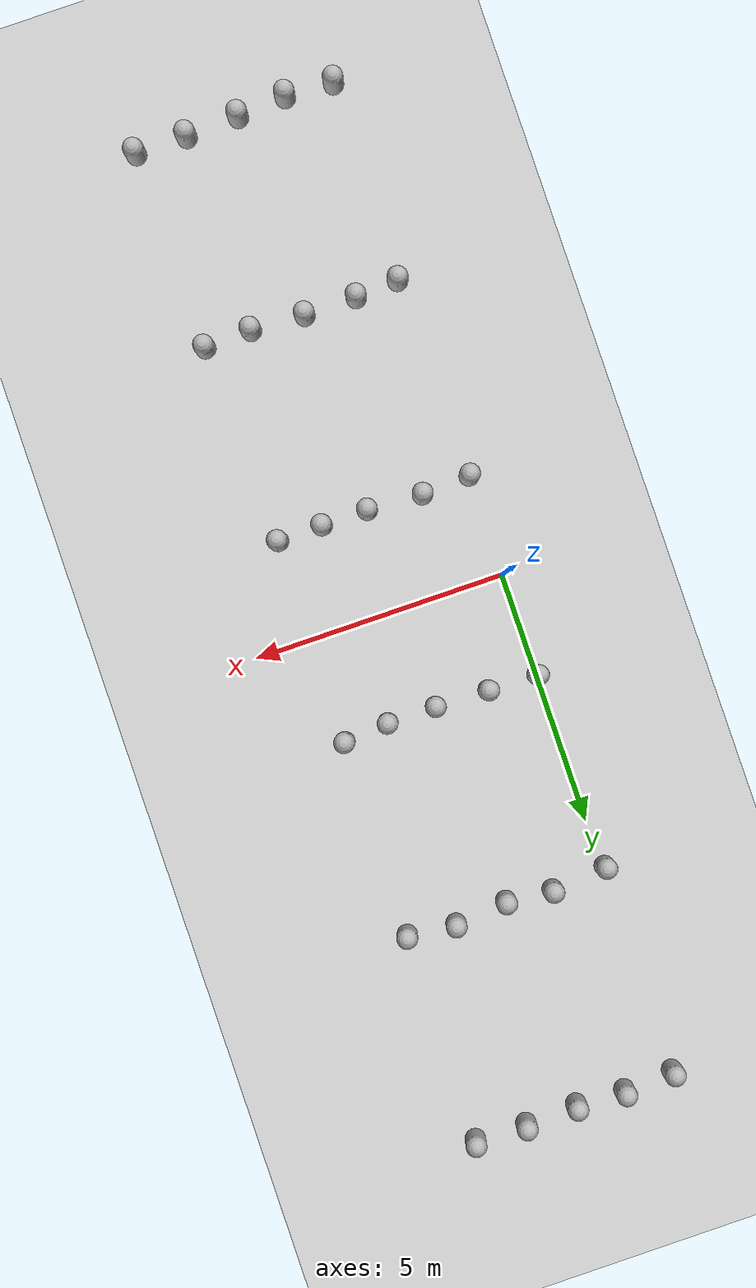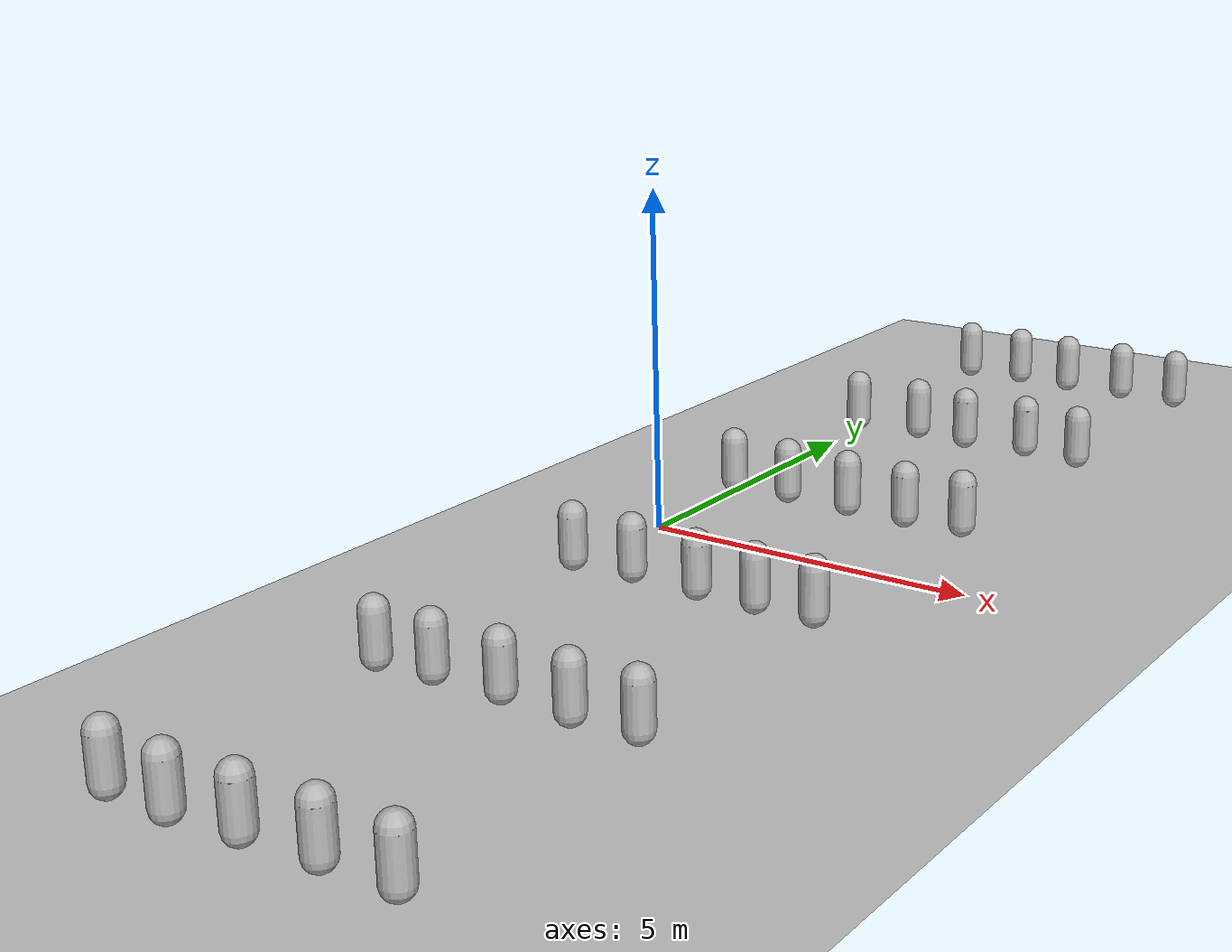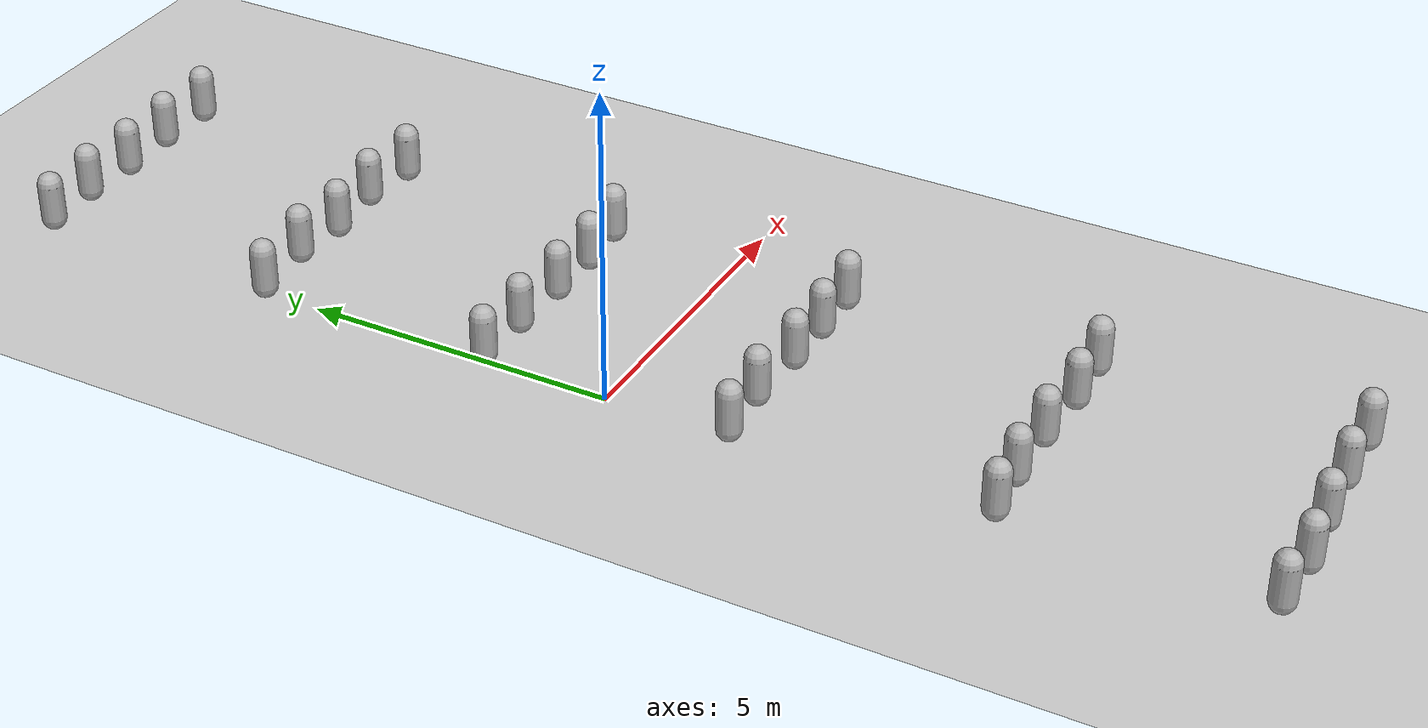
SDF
<sdf version='1.10'>
  <world name='empty'>
    <physics name='1ms' type='ignored'>
      <max_step_size>0.001</max_step_size>
      <real_time_factor>1</real_time_factor>
      <real_time_update_rate>1000</real_time_update_rate>
    </physics>
    <plugin name='gz::sim::systems::Physics' filename='gz-sim-physics-system'/>
    <plugin name='gz::sim::systems::UserCommands' filename='gz-sim-user-commands-system'/>
    <plugin name='gz::sim::systems::SceneBroadcaster' filename='gz-sim-scene-broadcaster-system'/>
    <plugin name='gz::sim::systems::Sensors' filename='gz-sim-sensors-system'>
      <render_engine>ogre2</render_engine>
    </plugin>
    <plugin name='gz::sim::systems::Contact' filename='gz-sim-contact-system'/>
    <gravity>0 0 -9.8000000000000007</gravity>
    <magnetic_field>5.5644999999999998e-06 2.2875799999999999e-05 -4.2388400000000002e-05</magnetic_field>
    <atmosphere type='adiabatic'/>
    <scene>
      <ambient>0.400000006 0.400000006 0.400000006 1</ambient>
      <background>0.699999988 0.699999988 0.699999988 1</background>
      <shadows>true</shadows>
    </scene>
    <model name='ground_plane'>
      <static>true</static>
      <link name='link'>
        <collision name='collision'>
          <geometry>
            <plane>
              <normal>0 0 1</normal>
              <size>100 100</size>
            </plane>
          </geometry>
          <surface>
            <friction>
              <ode/>
            </friction>
            <bounce/>
            <contact/>
          </surface>
        </collision>
        <visual name='visual'>
          <geometry>
            <plane>
              <normal>0 0 1</normal>
              <size>100 100</size>
            </plane>
          </geometry>
          <material>
            <ambient>0.800000012 0.800000012 0.800000012 1</ambient>
            <diffuse>0.800000012 0.800000012 0.800000012 1</diffuse>
            <specular>0.800000012 0.800000012 0.800000012 1</specular>
          </material>
        </visual>
        <pose>0 0 0 0 0 0</pose>
        <inertial>
          <pose>0 0 0 0 0 0</pose>
          <mass>1</mass>
          <inertia>
            <ixx>1</ixx>
            <ixy>0</ixy>
            <ixz>0</ixz>
            <iyy>1</iyy>
            <iyz>0</iyz>
            <izz>1</izz>
          </inertia>
        </inertial>
        <enable_wind>false</enable_wind>
      </link>
      <pose>0 0 0 0 0 0</pose>
      <self_collide>false</self_collide>
    </model>
    <model name='capsule'>
      <pose>-0.015504085364123732 2.0223022259179788 0.499999999902001 0 0 0</pose>
      <link name='capsule_link'>
        <inertial>
          <inertia>
            <ixx>0.074153999999999998</ixx>
            <ixy>0</ixy>
            <ixz>0</ixz>
            <iyy>0.074153999999999998</iyy>
            <iyz>0</iyz>
            <izz>0.018769000000000001</izz>
          </inertia>
          <mass>1</mass>
          <pose>0 0 0 0 0 0</pose>
        </inertial>
        <collision name='capsule_collision'>
          <geometry>
            <capsule>
              <radius>0.20000000000000001</radius>
              <length>0.59999999999999998</length>
            </capsule>
          </geometry>
          <surface>
            <friction>
              <ode/>
            </friction>
            <bounce/>
            <contact/>
          </surface>
        </collision>
        <visual name='capsule_visual'>
          <geometry>
            <capsule>
              <radius>0.20000000000000001</radius>
              <length>0.59999999999999998</length>
            </capsule>
          </geometry>
          <material>
            <ambient>0.300000012 0.300000012 0.300000012 1</ambient>
            <diffuse>0.699999988 0.699999988 0.699999988 1</diffuse>
            <specular>1 1 1 1</specular>
          </material>
        </visual>
        <pose>0 0 0 0 0 0</pose>
        <enable_wind>false</enable_wind>
      </link>
      <static>false</static>
      <self_collide>false</self_collide>
    </model>
    <model name='capsule_1'>
      <pose>0.97054917333275093 1.9993720327717266 0.499999999902001 0 0 0</pose>
      <link name='capsule_link'>
        <inertial>
          <inertia>
            <ixx>0.074153999999999998</ixx>
            <ixy>0</ixy>
            <ixz>0</ixz>
            <iyy>0.074153999999999998</iyy>
            <iyz>0</iyz>
            <izz>0.018769000000000001</izz>
          </inertia>
          <mass>1</mass>
        </inertial>
        <collision name='capsule_collision'>
          <geometry>
            <capsule>
              <radius>0.20000000000000001</radius>
              <length>0.59999999999999998</length>
            </capsule>
          </geometry>
          <surface>
            <friction>
              <ode/>
            </friction>
            <bounce/>
            <contact/>
          </surface>
        </collision>
        <visual name='capsule_visual'>
          <geometry>
            <capsule>
              <radius>0.20000000000000001</radius>
              <length>0.59999999999999998</length>
            </capsule>
          </geometry>
          <material>
            <ambient>0.300000012 0.300000012 0.300000012 1</ambient>
            <diffuse>0.699999988 0.699999988 0.699999988 1</diffuse>
            <specular>1 1 1 1</specular>
          </material>
        </visual>
      </link>
      <static>false</static>
      <self_collide>false</self_collide>
    </model>
    <model name='capsule_2'>
      <pose>2.0272820789827346 1.9705057532408881 0.499999999902001 0 0 0</pose>
      <link name='capsule_link'>
        <inertial>
          <inertia>
            <ixx>0.074153999999999998</ixx>
            <ixy>0</ixy>
            <ixz>0</ixz>
            <iyy>0.074153999999999998</iyy>
            <iyz>0</iyz>
            <izz>0.018769000000000001</izz>
          </inertia>
          <mass>1</mass>
        </inertial>
        <collision name='capsule_collision'>
          <geometry>
            <capsule>
              <radius>0.20000000000000001</radius>
              <length>0.59999999999999998</length>
            </capsule>
          </geometry>
          <surface>
            <friction>
              <ode/>
            </friction>
            <bounce/>
            <contact/>
          </surface>
        </collision>
        <visual name='capsule_visual'>
          <geometry>
            <capsule>
              <radius>0.20000000000000001</radius>
              <length>0.59999999999999998</length>
            </capsule>
          </geometry>
          <material>
            <ambient>0.300000012 0.300000012 0.300000012 1</ambient>
            <diffuse>0.699999988 0.699999988 0.699999988 1</diffuse>
            <specular>1 1 1 1</specular>
          </material>
        </visual>
      </link>
      <static>false</static>
      <self_collide>false</self_collide>
    </model>
    <model name='capsule_3'>
      <pose>2.9953771389620947 1.9740548271759886 0.499999999902001 0 0 0</pose>
      <link name='capsule_link'>
        <inertial>
          <inertia>
            <ixx>0.074153999999999998</ixx>
            <ixy>0</ixy>
            <ixz>0</ixz>
            <iyy>0.074153999999999998</iyy>
            <iyz>0</iyz>
            <izz>0.018769000000000001</izz>
          </inertia>
          <mass>1</mass>
        </inertial>
        <collision name='capsule_collision'>
          <geometry>
            <capsule>
              <radius>0.20000000000000001</radius>
              <length>0.59999999999999998</length>
            </capsule>
          </geometry>
          <surface>
            <friction>
              <ode/>
            </friction>
            <bounce/>
            <contact/>
          </surface>
        </collision>
        <visual name='capsule_visual'>
          <geometry>
            <capsule>
              <radius>0.20000000000000001</radius>
              <length>0.59999999999999998</length>
            </capsule>
          </geometry>
          <material>
            <ambient>0.300000012 0.300000012 0.300000012 1</ambient>
            <diffuse>0.699999988 0.699999988 0.699999988 1</diffuse>
            <specular>1 1 1 1</specular>
          </material>
        </visual>
      </link>
      <static>false</static>
      <self_collide>false</self_collide>
    </model>
    <model name='capsule_4'>
      <pose>3.8914296233820718 2.053773617481041 0.499999999902001 0 0 0</pose>
      <link name='capsule_link'>
        <inertial>
          <inertia>
            <ixx>0.074153999999999998</ixx>
            <ixy>0</ixy>
            <ixz>0</ixz>
            <iyy>0.074153999999999998</iyy>
            <iyz>0</iyz>
            <izz>0.018769000000000001</izz>
          </inertia>
          <mass>1</mass>
        </inertial>
        <collision name='capsule_collision'>
          <geometry>
            <capsule>
              <radius>0.20000000000000001</radius>
              <length>0.59999999999999998</length>
            </capsule>
          </geometry>
          <surface>
            <friction>
              <ode/>
            </friction>
            <bounce/>
            <contact/>
          </surface>
        </collision>
        <visual name='capsule_visual'>
          <geometry>
            <capsule>
              <radius>0.20000000000000001</radius>
              <length>0.59999999999999998</length>
            </capsule>
          </geometry>
          <material>
            <ambient>0.300000012 0.300000012 0.300000012 1</ambient>
            <diffuse>0.699999988 0.699999988 0.699999988 1</diffuse>
            <specular>1 1 1 1</specular>
          </material>
        </visual>
      </link>
      <static>false</static>
      <self_collide>false</self_collide>
    </model>
    <model name='capsule_5'>
      <pose>3.8598139703519969 -2.0004881097286829 0.499999999902001 0 0 0</pose>
      <link name='capsule_link'>
        <inertial>
          <inertia>
            <ixx>0.074153999999999998</ixx>
            <ixy>0</ixy>
            <ixz>0</ixz>
            <iyy>0.074153999999999998</iyy>
            <iyz>0</iyz>
            <izz>0.018769000000000001</izz>
          </inertia>
          <mass>1</mass>
        </inertial>
        <collision name='capsule_collision'>
          <geometry>
            <capsule>
              <radius>0.20000000000000001</radius>
              <length>0.59999999999999998</length>
            </capsule>
          </geometry>
          <surface>
            <friction>
              <ode/>
            </friction>
            <bounce/>
            <contact/>
          </surface>
        </collision>
        <visual name='capsule_visual'>
          <geometry>
            <capsule>
              <radius>0.20000000000000001</radius>
              <length>0.59999999999999998</length>
            </capsule>
          </geometry>
          <material>
            <ambient>0.300000012 0.300000012 0.300000012 1</ambient>
            <diffuse>0.699999988 0.699999988 0.699999988 1</diffuse>
            <specular>1 1 1 1</specular>
          </material>
        </visual>
      </link>
      <static>false</static>
      <self_collide>false</self_collide>
    </model>
    <model name='capsule_6'>
      <pose>2.9682266701583604 -2.0146066449862823 0.499999999902001 0 0 0</pose>
      <link name='capsule_link'>
        <inertial>
          <inertia>
            <ixx>0.074153999999999998</ixx>
            <ixy>0</ixy>
            <ixz>0</ixz>
            <iyy>0.074153999999999998</iyy>
            <iyz>0</iyz>
            <izz>0.018769000000000001</izz>
          </inertia>
          <mass>1</mass>
        </inertial>
        <collision name='capsule_collision'>
          <geometry>
            <capsule>
              <radius>0.20000000000000001</radius>
              <length>0.59999999999999998</length>
            </capsule>
          </geometry>
          <surface>
            <friction>
              <ode/>
            </friction>
            <bounce/>
            <contact/>
          </surface>
        </collision>
        <visual name='capsule_visual'>
          <geometry>
            <capsule>
              <radius>0.20000000000000001</radius>
              <length>0.59999999999999998</length>
            </capsule>
          </geometry>
          <material>
            <ambient>0.300000012 0.300000012 0.300000012 1</ambient>
            <diffuse>0.699999988 0.699999988 0.699999988 1</diffuse>
            <specular>1 1 1 1</specular>
          </material>
        </visual>
      </link>
      <static>false</static>
      <self_collide>false</self_collide>
    </model>
    <model name='capsule_7'>
      <pose>2.0504103721542997 -2.0161228031697096 0.499999999902001 0 0 0</pose>
      <link name='capsule_link'>
        <inertial>
          <inertia>
            <ixx>0.074153999999999998</ixx>
            <ixy>0</ixy>
            <ixz>0</ixz>
            <iyy>0.074153999999999998</iyy>
            <iyz>0</iyz>
            <izz>0.018769000000000001</izz>
          </inertia>
          <mass>1</mass>
        </inertial>
        <collision name='capsule_collision'>
          <geometry>
            <capsule>
              <radius>0.20000000000000001</radius>
              <length>0.59999999999999998</length>
            </capsule>
          </geometry>
          <surface>
            <friction>
              <ode/>
            </friction>
            <bounce/>
            <contact/>
          </surface>
        </collision>
        <visual name='capsule_visual'>
          <geometry>
            <capsule>
              <radius>0.20000000000000001</radius>
              <length>0.59999999999999998</length>
            </capsule>
          </geometry>
          <material>
            <ambient>0.300000012 0.300000012 0.300000012 1</ambient>
            <diffuse>0.699999988 0.699999988 0.699999988 1</diffuse>
            <specular>1 1 1 1</specular>
          </material>
        </visual>
      </link>
      <static>false</static>
      <self_collide>false</self_collide>
    </model>
    <model name='capsule_8'>
      <pose>0.95077118176590947 -1.9581262435794975 0.499999999902001 0 0 0</pose>
      <link name='capsule_link'>
        <inertial>
          <inertia>
            <ixx>0.074153999999999998</ixx>
            <ixy>0</ixy>
            <ixz>0</ixz>
            <iyy>0.074153999999999998</iyy>
            <iyz>0</iyz>
            <izz>0.018769000000000001</izz>
          </inertia>
          <mass>1</mass>
        </inertial>
        <collision name='capsule_collision'>
          <geometry>
            <capsule>
              <radius>0.20000000000000001</radius>
              <length>0.59999999999999998</length>
            </capsule>
          </geometry>
          <surface>
            <friction>
              <ode/>
            </friction>
            <bounce/>
            <contact/>
          </surface>
        </collision>
        <visual name='capsule_visual'>
          <geometry>
            <capsule>
              <radius>0.20000000000000001</radius>
              <length>0.59999999999999998</length>
            </capsule>
          </geometry>
          <material>
            <ambient>0.300000012 0.300000012 0.300000012 1</ambient>
            <diffuse>0.699999988 0.699999988 0.699999988 1</diffuse>
            <specular>1 1 1 1</specular>
          </material>
        </visual>
      </link>
      <static>false</static>
      <self_collide>false</self_collide>
    </model>
    <model name='capsule_9'>
      <pose>-0.015503570536382405 -2.0109721099811662 0.499999999902001 0 0 0</pose>
      <link name='capsule_link'>
        <inertial>
          <inertia>
            <ixx>0.074153999999999998</ixx>
            <ixy>0</ixy>
            <ixz>0</ixz>
            <iyy>0.074153999999999998</iyy>
            <iyz>0</iyz>
            <izz>0.018769000000000001</izz>
          </inertia>
          <mass>1</mass>
        </inertial>
        <collision name='capsule_collision'>
          <geometry>
            <capsule>
              <radius>0.20000000000000001</radius>
              <length>0.59999999999999998</length>
            </capsule>
          </geometry>
          <surface>
            <friction>
              <ode/>
            </friction>
            <bounce/>
            <contact/>
          </surface>
        </collision>
        <visual name='capsule_visual'>
          <geometry>
            <capsule>
              <radius>0.20000000000000001</radius>
              <length>0.59999999999999998</length>
            </capsule>
          </geometry>
          <material>
            <ambient>0.300000012 0.300000012 0.300000012 1</ambient>
            <diffuse>0.699999988 0.699999988 0.699999988 1</diffuse>
            <specular>1 1 1 1</specular>
          </material>
        </visual>
      </link>
      <static>false</static>
      <self_collide>false</self_collide>
    </model>
    <model name='capsule_10'>
      <pose>3.9520187097455963 5.9308314425512991 0.499999999902001 0 0 0</pose>
      <link name='capsule_link'>
        <inertial>
          <inertia>
            <ixx>0.074153999999999998</ixx>
            <ixy>0</ixy>
            <ixz>0</ixz>
            <iyy>0.074153999999999998</iyy>
            <iyz>0</iyz>
            <izz>0.018769000000000001</izz>
          </inertia>
          <mass>1</mass>
        </inertial>
        <collision name='capsule_collision'>
          <geometry>
            <capsule>
              <radius>0.20000000000000001</radius>
              <length>0.59999999999999998</length>
            </capsule>
          </geometry>
          <surface>
            <friction>
              <ode/>
            </friction>
            <bounce/>
            <contact/>
          </surface>
        </collision>
        <visual name='capsule_visual'>
          <geometry>
            <capsule>
              <radius>0.20000000000000001</radius>
              <length>0.59999999999999998</length>
            </capsule>
          </geometry>
          <material>
            <ambient>0.300000012 0.300000012 0.300000012 1</ambient>
            <diffuse>0.699999988 0.699999988 0.699999988 1</diffuse>
            <specular>1 1 1 1</specular>
          </material>
        </visual>
      </link>
      <static>false</static>
      <self_collide>false</self_collide>
    </model>
    <model name='capsule_11'>
      <pose>2.9985951605604084 6.0275904327568472 0.499999999902001 0 0 0</pose>
      <link name='capsule_link'>
        <inertial>
          <inertia>
            <ixx>0.074153999999999998</ixx>
            <ixy>0</ixy>
            <ixz>0</ixz>
            <iyy>0.074153999999999998</iyy>
            <iyz>0</iyz>
            <izz>0.018769000000000001</izz>
          </inertia>
          <mass>1</mass>
        </inertial>
        <collision name='capsule_collision'>
          <geometry>
            <capsule>
              <radius>0.20000000000000001</radius>
              <length>0.59999999999999998</length>
            </capsule>
          </geometry>
          <surface>
            <friction>
              <ode/>
            </friction>
            <bounce/>
            <contact/>
          </surface>
        </collision>
        <visual name='capsule_visual'>
          <geometry>
            <capsule>
              <radius>0.20000000000000001</radius>
              <length>0.59999999999999998</length>
            </capsule>
          </geometry>
          <material>
            <ambient>0.300000012 0.300000012 0.300000012 1</ambient>
            <diffuse>0.699999988 0.699999988 0.699999988 1</diffuse>
            <specular>1 1 1 1</specular>
          </material>
        </visual>
      </link>
      <static>false</static>
      <self_collide>false</self_collide>
    </model>
    <model name='capsule_12'>
      <pose>1.9575937534177967 5.9240054966321996 0.499999999902001 0 0 0</pose>
      <link name='capsule_link'>
        <inertial>
          <inertia>
            <ixx>0.074153999999999998</ixx>
            <ixy>0</ixy>
            <ixz>0</ixz>
            <iyy>0.074153999999999998</iyy>
            <iyz>0</iyz>
            <izz>0.018769000000000001</izz>
          </inertia>
          <mass>1</mass>
        </inertial>
        <collision name='capsule_collision'>
          <geometry>
            <capsule>
              <radius>0.20000000000000001</radius>
              <length>0.59999999999999998</length>
            </capsule>
          </geometry>
          <surface>
            <friction>
              <ode/>
            </friction>
            <bounce/>
            <contact/>
          </surface>
        </collision>
        <visual name='capsule_visual'>
          <geometry>
            <capsule>
              <radius>0.20000000000000001</radius>
              <length>0.59999999999999998</length>
            </capsule>
          </geometry>
          <material>
            <ambient>0.300000012 0.300000012 0.300000012 1</ambient>
            <diffuse>0.699999988 0.699999988 0.699999988 1</diffuse>
            <specular>1 1 1 1</specular>
          </material>
        </visual>
      </link>
      <static>false</static>
      <self_collide>false</self_collide>
    </model>
    <model name='capsule_13'>
      <pose>1.0432605274383384 6.0061365004166412 0.499999999902001 0 0 0</pose>
      <link name='capsule_link'>
        <inertial>
          <inertia>
            <ixx>0.074153999999999998</ixx>
            <ixy>0</ixy>
            <ixz>0</ixz>
            <iyy>0.074153999999999998</iyy>
            <iyz>0</iyz>
            <izz>0.018769000000000001</izz>
          </inertia>
          <mass>1</mass>
        </inertial>
        <collision name='capsule_collision'>
          <geometry>
            <capsule>
              <radius>0.20000000000000001</radius>
              <length>0.59999999999999998</length>
            </capsule>
          </geometry>
          <surface>
            <friction>
              <ode/>
            </friction>
            <bounce/>
            <contact/>
          </surface>
        </collision>
        <visual name='capsule_visual'>
          <geometry>
            <capsule>
              <radius>0.20000000000000001</radius>
              <length>0.59999999999999998</length>
            </capsule>
          </geometry>
          <material>
            <ambient>0.300000012 0.300000012 0.300000012 1</ambient>
            <diffuse>0.699999988 0.699999988 0.699999988 1</diffuse>
            <specular>1 1 1 1</specular>
          </material>
        </visual>
      </link>
      <static>false</static>
      <self_collide>false</self_collide>
    </model>
    <model name='capsule_14'>
      <pose>-0.04726887991923423 5.901627625103643 0.499999999902001 0 0 0</pose>
      <link name='capsule_link'>
        <inertial>
          <inertia>
            <ixx>0.074153999999999998</ixx>
            <ixy>0</ixy>
            <ixz>0</ixz>
            <iyy>0.074153999999999998</iyy>
            <iyz>0</iyz>
            <izz>0.018769000000000001</izz>
          </inertia>
          <mass>1</mass>
        </inertial>
        <collision name='capsule_collision'>
          <geometry>
            <capsule>
              <radius>0.20000000000000001</radius>
              <length>0.59999999999999998</length>
            </capsule>
          </geometry>
          <surface>
            <friction>
              <ode/>
            </friction>
            <bounce/>
            <contact/>
          </surface>
        </collision>
        <visual name='capsule_visual'>
          <geometry>
            <capsule>
              <radius>0.20000000000000001</radius>
              <length>0.59999999999999998</length>
            </capsule>
          </geometry>
          <material>
            <ambient>0.300000012 0.300000012 0.300000012 1</ambient>
            <diffuse>0.699999988 0.699999988 0.699999988 1</diffuse>
            <specular>1 1 1 1</specular>
          </material>
        </visual>
      </link>
      <static>false</static>
      <self_collide>false</self_collide>
    </model>
    <model name='capsule_15'>
      <pose>-0.0013034962334401712 10.000638691759502 0.499999999902001 0 0 0</pose>
      <link name='capsule_link'>
        <inertial>
          <inertia>
            <ixx>0.074153999999999998</ixx>
            <ixy>0</ixy>
            <ixz>0</ixz>
            <iyy>0.074153999999999998</iyy>
            <iyz>0</iyz>
            <izz>0.018769000000000001</izz>
          </inertia>
          <mass>1</mass>
        </inertial>
        <collision name='capsule_collision'>
          <geometry>
            <capsule>
              <radius>0.20000000000000001</radius>
              <length>0.59999999999999998</length>
            </capsule>
          </geometry>
          <surface>
            <friction>
              <ode/>
            </friction>
            <bounce/>
            <contact/>
          </surface>
        </collision>
        <visual name='capsule_visual'>
          <geometry>
            <capsule>
              <radius>0.20000000000000001</radius>
              <length>0.59999999999999998</length>
            </capsule>
          </geometry>
          <material>
            <ambient>0.300000012 0.300000012 0.300000012 1</ambient>
            <diffuse>0.699999988 0.699999988 0.699999988 1</diffuse>
            <specular>1 1 1 1</specular>
          </material>
        </visual>
      </link>
      <static>false</static>
      <self_collide>false</self_collide>
    </model>
    <model name='capsule_16'>
      <pose>0.98381668446381276 10.059199504173773 0.499999999902001 0 0 0</pose>
      <link name='capsule_link'>
        <inertial>
          <inertia>
            <ixx>0.074153999999999998</ixx>
            <ixy>0</ixy>
            <ixz>0</ixz>
            <iyy>0.074153999999999998</iyy>
            <iyz>0</iyz>
            <izz>0.018769000000000001</izz>
          </inertia>
          <mass>1</mass>
        </inertial>
        <collision name='capsule_collision'>
          <geometry>
            <capsule>
              <radius>0.20000000000000001</radius>
              <length>0.59999999999999998</length>
            </capsule>
          </geometry>
          <surface>
            <friction>
              <ode/>
            </friction>
            <bounce/>
            <contact/>
          </surface>
        </collision>
        <visual name='capsule_visual'>
          <geometry>
            <capsule>
              <radius>0.20000000000000001</radius>
              <length>0.59999999999999998</length>
            </capsule>
          </geometry>
          <material>
            <ambient>0.300000012 0.300000012 0.300000012 1</ambient>
            <diffuse>0.699999988 0.699999988 0.699999988 1</diffuse>
            <specular>1 1 1 1</specular>
          </material>
        </visual>
      </link>
      <static>false</static>
      <self_collide>false</self_collide>
    </model>
    <model name='capsule_17'>
      <pose>1.9421226706198578 10.017949031649696 0.499999999902001 0 0 0</pose>
      <link name='capsule_link'>
        <inertial>
          <inertia>
            <ixx>0.074153999999999998</ixx>
            <ixy>0</ixy>
            <ixz>0</ixz>
            <iyy>0.074153999999999998</iyy>
            <iyz>0</iyz>
            <izz>0.018769000000000001</izz>
          </inertia>
          <mass>1</mass>
        </inertial>
        <collision name='capsule_collision'>
          <geometry>
            <capsule>
              <radius>0.20000000000000001</radius>
              <length>0.59999999999999998</length>
            </capsule>
          </geometry>
          <surface>
            <friction>
              <ode/>
            </friction>
            <bounce/>
            <contact/>
          </surface>
        </collision>
        <visual name='capsule_visual'>
          <geometry>
            <capsule>
              <radius>0.20000000000000001</radius>
              <length>0.59999999999999998</length>
            </capsule>
          </geometry>
          <material>
            <ambient>0.300000012 0.300000012 0.300000012 1</ambient>
            <diffuse>0.699999988 0.699999988 0.699999988 1</diffuse>
            <specular>1 1 1 1</specular>
          </material>
        </visual>
      </link>
      <static>false</static>
      <self_collide>false</self_collide>
    </model>
    <model name='capsule_18'>
      <pose>2.9642588997425303 10.058974511462537 0.499999999902001 0 0 0</pose>
      <link name='capsule_link'>
        <inertial>
          <inertia>
            <ixx>0.074153999999999998</ixx>
            <ixy>0</ixy>
            <ixz>0</ixz>
            <iyy>0.074153999999999998</iyy>
            <iyz>0</iyz>
            <izz>0.018769000000000001</izz>
          </inertia>
          <mass>1</mass>
        </inertial>
        <collision name='capsule_collision'>
          <geometry>
            <capsule>
              <radius>0.20000000000000001</radius>
              <length>0.59999999999999998</length>
            </capsule>
          </geometry>
          <surface>
            <friction>
              <ode/>
            </friction>
            <bounce/>
            <contact/>
          </surface>
        </collision>
        <visual name='capsule_visual'>
          <geometry>
            <capsule>
              <radius>0.20000000000000001</radius>
              <length>0.59999999999999998</length>
            </capsule>
          </geometry>
          <material>
            <ambient>0.300000012 0.300000012 0.300000012 1</ambient>
            <diffuse>0.699999988 0.699999988 0.699999988 1</diffuse>
            <specular>1 1 1 1</specular>
          </material>
        </visual>
      </link>
      <static>false</static>
      <self_collide>false</self_collide>
    </model>
    <model name='capsule_19'>
      <pose>3.9779146208468941 10.039233638921164 0.499999999902001 0 0 0</pose>
      <link name='capsule_link'>
        <inertial>
          <inertia>
            <ixx>0.074153999999999998</ixx>
            <ixy>0</ixy>
            <ixz>0</ixz>
            <iyy>0.074153999999999998</iyy>
            <iyz>0</iyz>
            <izz>0.018769000000000001</izz>
          </inertia>
          <mass>1</mass>
        </inertial>
        <collision name='capsule_collision'>
          <geometry>
            <capsule>
              <radius>0.20000000000000001</radius>
              <length>0.59999999999999998</length>
            </capsule>
          </geometry>
          <surface>
            <friction>
              <ode/>
            </friction>
            <bounce/>
            <contact/>
          </surface>
        </collision>
        <visual name='capsule_visual'>
          <geometry>
            <capsule>
              <radius>0.20000000000000001</radius>
              <length>0.59999999999999998</length>
            </capsule>
          </geometry>
          <material>
            <ambient>0.300000012 0.300000012 0.300000012 1</ambient>
            <diffuse>0.699999988 0.699999988 0.699999988 1</diffuse>
            <specular>1 1 1 1</specular>
          </material>
        </visual>
      </link>
      <static>false</static>
      <self_collide>false</self_collide>
    </model>
    <model name='capsule_20'>
      <pose>3.9897662253625388 -5.9690942619341829 0.499999999902001 0 0 0</pose>
      <link name='capsule_link'>
        <inertial>
          <inertia>
            <ixx>0.074153999999999998</ixx>
            <ixy>0</ixy>
            <ixz>0</ixz>
            <iyy>0.074153999999999998</iyy>
            <iyz>0</iyz>
            <izz>0.018769000000000001</izz>
          </inertia>
          <mass>1</mass>
        </inertial>
        <collision name='capsule_collision'>
          <geometry>
            <capsule>
              <radius>0.20000000000000001</radius>
              <length>0.59999999999999998</length>
            </capsule>
          </geometry>
          <surface>
            <friction>
              <ode/>
            </friction>
            <bounce/>
            <contact/>
          </surface>
        </collision>
        <visual name='capsule_visual'>
          <geometry>
            <capsule>
              <radius>0.20000000000000001</radius>
              <length>0.59999999999999998</length>
            </capsule>
          </geometry>
          <material>
            <ambient>0.300000012 0.300000012 0.300000012 1</ambient>
            <diffuse>0.699999988 0.699999988 0.699999988 1</diffuse>
            <specular>1 1 1 1</specular>
          </material>
        </visual>
      </link>
      <static>false</static>
      <self_collide>false</self_collide>
    </model>
    <model name='capsule_21'>
      <pose>3.0497141465371982 -6.0068538569833905 0.499999999902001 0 0 0</pose>
      <link name='capsule_link'>
        <inertial>
          <inertia>
            <ixx>0.074153999999999998</ixx>
            <ixy>0</ixy>
            <ixz>0</ixz>
            <iyy>0.074153999999999998</iyy>
            <iyz>0</iyz>
            <izz>0.018769000000000001</izz>
          </inertia>
          <mass>1</mass>
        </inertial>
        <collision name='capsule_collision'>
          <geometry>
            <capsule>
              <radius>0.20000000000000001</radius>
              <length>0.59999999999999998</length>
            </capsule>
          </geometry>
          <surface>
            <friction>
              <ode/>
            </friction>
            <bounce/>
            <contact/>
          </surface>
        </collision>
        <visual name='capsule_visual'>
          <geometry>
            <capsule>
              <radius>0.20000000000000001</radius>
              <length>0.59999999999999998</length>
            </capsule>
          </geometry>
          <material>
            <ambient>0.300000012 0.300000012 0.300000012 1</ambient>
            <diffuse>0.699999988 0.699999988 0.699999988 1</diffuse>
            <specular>1 1 1 1</specular>
          </material>
        </visual>
      </link>
      <static>false</static>
      <self_collide>false</self_collide>
    </model>
    <model name='capsule_22'>
      <pose>1.9800203686345519 -5.948882622192281 0.499999999902001 0 0 0</pose>
      <link name='capsule_link'>
        <inertial>
          <inertia>
            <ixx>0.074153999999999998</ixx>
            <ixy>0</ixy>
            <ixz>0</ixz>
            <iyy>0.074153999999999998</iyy>
            <iyz>0</iyz>
            <izz>0.018769000000000001</izz>
          </inertia>
          <mass>1</mass>
        </inertial>
        <collision name='capsule_collision'>
          <geometry>
            <capsule>
              <radius>0.20000000000000001</radius>
              <length>0.59999999999999998</length>
            </capsule>
          </geometry>
          <surface>
            <friction>
              <ode/>
            </friction>
            <bounce/>
            <contact/>
          </surface>
        </collision>
        <visual name='capsule_visual'>
          <geometry>
            <capsule>
              <radius>0.20000000000000001</radius>
              <length>0.59999999999999998</length>
            </capsule>
          </geometry>
          <material>
            <ambient>0.300000012 0.300000012 0.300000012 1</ambient>
            <diffuse>0.699999988 0.699999988 0.699999988 1</diffuse>
            <specular>1 1 1 1</specular>
          </material>
        </visual>
      </link>
      <static>false</static>
      <self_collide>false</self_collide>
    </model>
    <model name='capsule_23'>
      <pose>0.93558147679654358 -5.9544301738300671 0.499999999902001 0 0 0</pose>
      <link name='capsule_link'>
        <inertial>
          <inertia>
            <ixx>0.074153999999999998</ixx>
            <ixy>0</ixy>
            <ixz>0</ixz>
            <iyy>0.074153999999999998</iyy>
            <iyz>0</iyz>
            <izz>0.018769000000000001</izz>
          </inertia>
          <mass>1</mass>
        </inertial>
        <collision name='capsule_collision'>
          <geometry>
            <capsule>
              <radius>0.20000000000000001</radius>
              <length>0.59999999999999998</length>
            </capsule>
          </geometry>
          <surface>
            <friction>
              <ode/>
            </friction>
            <bounce/>
            <contact/>
          </surface>
        </collision>
        <visual name='capsule_visual'>
          <geometry>
            <capsule>
              <radius>0.20000000000000001</radius>
              <length>0.59999999999999998</length>
            </capsule>
          </geometry>
          <material>
            <ambient>0.300000012 0.300000012 0.300000012 1</ambient>
            <diffuse>0.699999988 0.699999988 0.699999988 1</diffuse>
            <specular>1 1 1 1</specular>
          </material>
        </visual>
      </link>
      <static>false</static>
      <self_collide>false</self_collide>
    </model>
    <model name='capsule_24'>
      <pose>0.073316171626057525 -6.0103458582944924 0.499999999902001 0 0 0</pose>
      <link name='capsule_link'>
        <inertial>
          <inertia>
            <ixx>0.074153999999999998</ixx>
            <ixy>0</ixy>
            <ixz>0</ixz>
            <iyy>0.074153999999999998</iyy>
            <iyz>0</iyz>
            <izz>0.018769000000000001</izz>
          </inertia>
          <mass>1</mass>
        </inertial>
        <collision name='capsule_collision'>
          <geometry>
            <capsule>
              <radius>0.20000000000000001</radius>
              <length>0.59999999999999998</length>
            </capsule>
          </geometry>
          <surface>
            <friction>
              <ode/>
            </friction>
            <bounce/>
            <contact/>
          </surface>
        </collision>
        <visual name='capsule_visual'>
          <geometry>
            <capsule>
              <radius>0.20000000000000001</radius>
              <length>0.59999999999999998</length>
            </capsule>
          </geometry>
          <material>
            <ambient>0.300000012 0.300000012 0.300000012 1</ambient>
            <diffuse>0.699999988 0.699999988 0.699999988 1</diffuse>
            <specular>1 1 1 1</specular>
          </material>
        </visual>
      </link>
      <static>false</static>
      <self_collide>false</self_collide>
    </model>
    <model name='capsule_25'>
      <pose>4.0504830772005391 -9.9466911714824136 0.499999999902001 0 0 0</pose>
      <link name='capsule_link'>
        <inertial>
          <inertia>
            <ixx>0.074153999999999998</ixx>
            <ixy>0</ixy>
            <ixz>0</ixz>
            <iyy>0.074153999999999998</iyy>
            <iyz>0</iyz>
            <izz>0.018769000000000001</izz>
          </inertia>
          <mass>1</mass>
        </inertial>
        <collision name='capsule_collision'>
          <geometry>
            <capsule>
              <radius>0.20000000000000001</radius>
              <length>0.59999999999999998</length>
            </capsule>
          </geometry>
          <surface>
            <friction>
              <ode/>
            </friction>
            <bounce/>
            <contact/>
          </surface>
        </collision>
        <visual name='capsule_visual'>
          <geometry>
            <capsule>
              <radius>0.20000000000000001</radius>
              <length>0.59999999999999998</length>
            </capsule>
          </geometry>
          <material>
            <ambient>0.300000012 0.300000012 0.300000012 1</ambient>
            <diffuse>0.699999988 0.699999988 0.699999988 1</diffuse>
            <specular>1 1 1 1</specular>
          </material>
        </visual>
      </link>
      <static>false</static>
      <self_collide>false</self_collide>
    </model>
    <model name='capsule_26'>
      <pose>3.022737363321097 -9.9484245209125586 0.499999999902001 0 0 0</pose>
      <link name='capsule_link'>
        <inertial>
          <inertia>
            <ixx>0.074153999999999998</ixx>
            <ixy>0</ixy>
            <ixz>0</ixz>
            <iyy>0.074153999999999998</iyy>
            <iyz>0</iyz>
            <izz>0.018769000000000001</izz>
          </inertia>
          <mass>1</mass>
        </inertial>
        <collision name='capsule_collision'>
          <geometry>
            <capsule>
              <radius>0.20000000000000001</radius>
              <length>0.59999999999999998</length>
            </capsule>
          </geometry>
          <surface>
            <friction>
              <ode/>
            </friction>
            <bounce/>
            <contact/>
          </surface>
        </collision>
        <visual name='capsule_visual'>
          <geometry>
            <capsule>
              <radius>0.20000000000000001</radius>
              <length>0.59999999999999998</length>
            </capsule>
          </geometry>
          <material>
            <ambient>0.300000012 0.300000012 0.300000012 1</ambient>
            <diffuse>0.699999988 0.699999988 0.699999988 1</diffuse>
            <specular>1 1 1 1</specular>
          </material>
        </visual>
      </link>
      <static>false</static>
      <self_collide>false</self_collide>
    </model>
    <model name='capsule_27'>
      <pose>1.9606475090068844 -9.997227084647367 0.499999999902001 0 0 0</pose>
      <link name='capsule_link'>
        <inertial>
          <inertia>
            <ixx>0.074153999999999998</ixx>
            <ixy>0</ixy>
            <ixz>0</ixz>
            <iyy>0.074153999999999998</iyy>
            <iyz>0</iyz>
            <izz>0.018769000000000001</izz>
          </inertia>
          <mass>1</mass>
        </inertial>
        <collision name='capsule_collision'>
          <geometry>
            <capsule>
              <radius>0.20000000000000001</radius>
              <length>0.59999999999999998</length>
            </capsule>
          </geometry>
          <surface>
            <friction>
              <ode/>
            </friction>
            <bounce/>
            <contact/>
          </surface>
        </collision>
        <visual name='capsule_visual'>
          <geometry>
            <capsule>
              <radius>0.20000000000000001</radius>
              <length>0.59999999999999998</length>
            </capsule>
          </geometry>
          <material>
            <ambient>0.300000012 0.300000012 0.300000012 1</ambient>
            <diffuse>0.699999988 0.699999988 0.699999988 1</diffuse>
            <specular>1 1 1 1</specular>
          </material>
        </visual>
      </link>
      <static>false</static>
      <self_collide>false</self_collide>
    </model>
    <model name='capsule_28'>
      <pose>0.97999139672576607 -10.06948117089032 0.499999999902001 0 0 0</pose>
      <link name='capsule_link'>
        <inertial>
          <inertia>
            <ixx>0.074153999999999998</ixx>
            <ixy>0</ixy>
            <ixz>0</ixz>
            <iyy>0.074153999999999998</iyy>
            <iyz>0</iyz>
            <izz>0.018769000000000001</izz>
          </inertia>
          <mass>1</mass>
        </inertial>
        <collision name='capsule_collision'>
          <geometry>
            <capsule>
              <radius>0.20000000000000001</radius>
              <length>0.59999999999999998</length>
            </capsule>
          </geometry>
          <surface>
            <friction>
              <ode/>
            </friction>
            <bounce/>
            <contact/>
          </surface>
        </collision>
        <visual name='capsule_visual'>
          <geometry>
            <capsule>
              <radius>0.20000000000000001</radius>
              <length>0.59999999999999998</length>
            </capsule>
          </geometry>
          <material>
            <ambient>0.300000012 0.300000012 0.300000012 1</ambient>
            <diffuse>0.699999988 0.699999988 0.699999988 1</diffuse>
            <specular>1 1 1 1</specular>
          </material>
        </visual>
      </link>
      <static>false</static>
      <self_collide>false</self_collide>
    </model>
    <model name='capsule_29'>
      <pose>0.011166247322639933 -10.024814098166095 0.499999999902001 0 0 0</pose>
      <link name='capsule_link'>
        <inertial>
          <inertia>
            <ixx>0.074153999999999998</ixx>
            <ixy>0</ixy>
            <ixz>0</ixz>
            <iyy>0.074153999999999998</iyy>
            <iyz>0</iyz>
            <izz>0.018769000000000001</izz>
          </inertia>
          <mass>1</mass>
        </inertial>
        <collision name='capsule_collision'>
          <geometry>
            <capsule>
              <radius>0.20000000000000001</radius>
              <length>0.59999999999999998</length>
            </capsule>
          </geometry>
          <surface>
            <friction>
              <ode/>
            </friction>
            <bounce/>
            <contact/>
          </surface>
        </collision>
        <visual name='capsule_visual'>
          <geometry>
            <capsule>
              <radius>0.20000000000000001</radius>
              <length>0.59999999999999998</length>
            </capsule>
          </geometry>
          <material>
            <ambient>0.300000012 0.300000012 0.300000012 1</ambient>
            <diffuse>0.699999988 0.699999988 0.699999988 1</diffuse>
            <specular>1 1 1 1</specular>
          </material>
        </visual>
      </link>
      <static>false</static>
      <self_collide>false</self_collide>
    </model>
    <light name='sun' type='directional'>
      <pose>0 0 10 0 0 0</pose>
      <cast_shadows>true</cast_shadows>
      <intensity>1</intensity>
      <direction>-0.5 0.10000000000000001 -0.90000000000000002</direction>
      <diffuse>0.800000012 0.800000012 0.800000012 1</diffuse>
      <specular>0.200000003 0.200000003 0.200000003 1</specular>
      <attenuation>
        <range>1000</range>
        <linear>0.01</linear>
        <constant>0.90000000000000002</constant>
        <quadratic>0.001</quadratic>
      </attenuation>
      <spot>
        <inner_angle>0</inner_angle>
        <outer_angle>0</outer_angle>
        <falloff>0</falloff>
      </spot>
    </light>
  </world>
</sdf>
